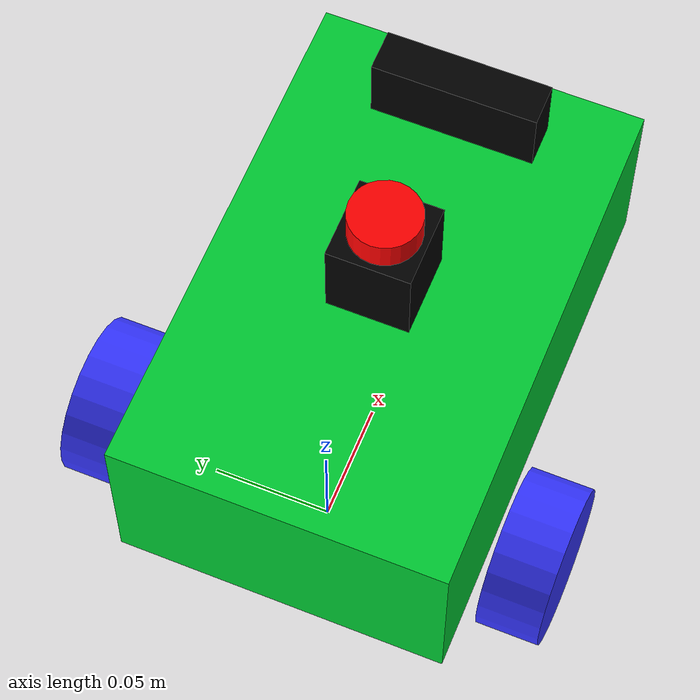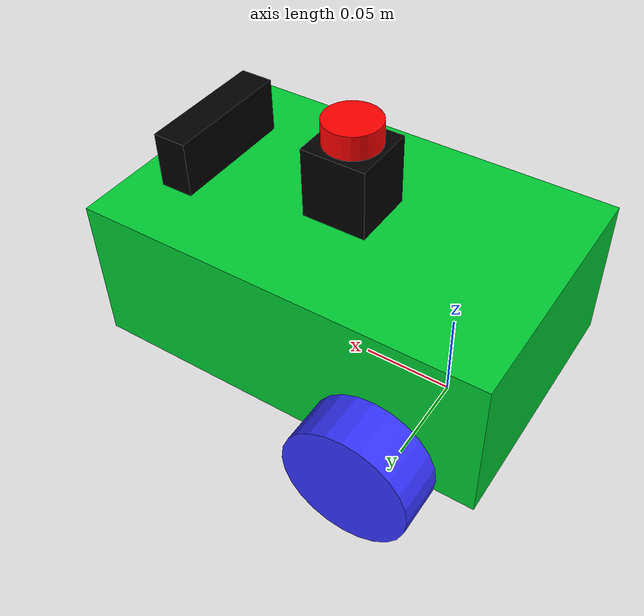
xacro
<?xml version="1.0"?>
<robot xmlns:xacro="http://www.ros.org/wiki/xacro"  name="differential_drive_robot">

    <xacro:arg name="use_ros2_control" default="true"/>
    <xacro:arg name="sim_mode" default="false"/>

    <xacro:include filename="robot_core.xacro"/>

    <xacro:if value="$(arg use_ros2_control)">
        <xacro:include filename="ros2_control.xacro"/>
    </xacro:if>
    <xacro:unless value="$(arg use_ros2_control)">
        <xacro:include filename="gazebo_control.xacro"/>
    </xacro:unless>

    <xacro:include filename="lidar.xacro"/>

    <xacro:include filename="camera.xacro"/>

</robot>

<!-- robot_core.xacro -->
<robot xmlns:xacro="http://www.ros.org/wiki/xacro">

    <xacro:include filename="inertial_macros.xacro"/>

    <xacro:property name="chassis_length" value="0.22"/>
    <xacro:property name="chassis_width" value="0.14"/>
    <xacro:property name="chassis_height" value="0.082"/>
    <xacro:property name="chassis_mass" value="1.0"/>
    <xacro:property name="chassis_offset_z" value="0.015"/>
    <xacro:property name="wheel_radius" value="0.033"/>
    <xacro:property name="wheel_thickness" value="0.026"/>
    <xacro:property name="wheel_mass" value="0.0385"/>
    <xacro:property name="wheel_offset_x" value="0.05"/>
    <xacro:property name="wheel_offset_y" value="0.09"/>
    <xacro:property name="wheel_offset_z" value="0.033"/>
    <xacro:property name="caster_wheel_radius" value="0.015"/>
    <xacro:property name="caster_wheel_mass" value="0.02"/>
    <xacro:property name="caster_wheel_offset_x" value="0.06"/>
    <xacro:property name="caster_wheel_offset_z" value="0.015"/>

    <xacro:property name="wheel_effort" value="2000"/>
    <xacro:property name="wheel_velocity" value="30"/>

    <material name="white">
        <color rgba="1 1 1 1"/>
    </material>

    <material name="orange">
        <color rgba="1 0.3 0.1 1"/>
    </material>

    <material name="blue">
        <color rgba="0.2 0.2 1 1"/>
    </material>

    <material name="black">
        <color rgba="0 0 0 1"/>
    </material>

    <material name="red">
        <color rgba="1 0 0 1"/>
    </material>

    <material name="green">
        <color rgba="0 0.8 0.2 1"/>
    </material>

    <!-- BASE FOOTPRINT -->
    <link name="base_footprint"></link>

    <!-- BASE LINK -->
    <joint name="base_joint" type="fixed">
        <parent link="base_footprint"/>
        <child link="base_link"/>
        <origin xyz="0 0 ${chassis_offset_z}" rpy="0 0 0"/>
    </joint>

    <link name="base_link"></link>

    <!-- CHASSIS LINK -->
    <joint name="chassis_joint" type="fixed">
        <parent link="base_link"/>
        <child link="chassis"/>
        <origin xyz="${-wheel_offset_x} 0 0"/>
    </joint>

    <link name="chassis">
        <visual>
            <origin xyz="${chassis_length/2} 0 ${chassis_height/2}"/>
            <geometry>
                <box size="${chassis_length} ${chassis_width} ${chassis_height}"/>
            </geometry>
            <material name="green"/>
        </visual>
        <collision>
            <origin xyz="${chassis_length/2} 0 ${chassis_height/2}"/>
            <geometry>
                <box size="${chassis_length} ${chassis_width} ${chassis_height}"/>
            </geometry>
        </collision>
        <xacro:inertial_box mass="${chassis_mass}" x="${chassis_length}" y="${chassis_width}" z="${chassis_height}">
            <origin xyz="${chassis_length/2} 0 ${chassis_height/2}" rpy="0 0 0"/>
        </xacro:inertial_box>
    </link>

    <gazebo reference="chassis">
        <material>Gazebo/Green</material>
    </gazebo>

    <!-- LEFT WHEEL LINK -->
    <joint name="left_wheel_joint" type="continuous">
        <parent link="base_link"/>
        <child link="left_wheel"/>
        <origin xyz="0 ${wheel_offset_y} ${wheel_offset_z - chassis_offset_z}" rpy="-${pi/2} 0 0"/>
        <axis xyz="0 0 1"/>
        <limit effort="${wheel_effort}" velocity="${wheel_velocity}"/>
        <dynamics damping="1.0" friction="1.0"/>
    </joint>

    <link name="left_wheel">
        <visual>
            <geometry>
                <cylinder radius="${wheel_radius}" length="${wheel_thickness}"/>
            </geometry>
            <material name="blue"/>
        </visual>
        <collision>
            <geometry>
                <cylinder radius="${wheel_radius}" length="${wheel_thickness}"/>
            </geometry>
        </collision>
        <xacro:inertial_cylinder mass="${wheel_mass}" length="${wheel_thickness}" radius="${wheel_radius}">
            <origin xyz="0 0 0" rpy="0 0 0"/>
        </xacro:inertial_cylinder>
    </link>

    <gazebo reference="left_wheel">
        <material>Gazebo/Blue</material>
        <mu1>0.2</mu1>
        <mu2>0.2</mu2>
    </gazebo>

    <!-- RIGHT WHEEL LINK -->
    <joint name="right_wheel_joint" type="continuous">
        <parent link="base_link"/>
        <child link="right_wheel"/>
        <origin xyz="0 ${-wheel_offset_y} ${wheel_offset_z - chassis_offset_z}" rpy="${pi/2} 0 0"/>
        <axis xyz="0 0 -1"/>
        <limit effort="${wheel_effort}" velocity="${wheel_velocity}"/>
        <dynamics damping="1.0" friction="1.0"/>
    </joint>

    <link name="right_wheel">
        <visual>
            <geometry>
                <cylinder radius="${wheel_radius}" length="${wheel_thickness}"/>
            </geometry>
            <material name="blue"/>
        </visual>
        <collision>
            <geometry>
                <cylinder radius="${wheel_radius}" length="${wheel_thickness}"/>
            </geometry>
        </collision>
        <xacro:inertial_cylinder mass="${wheel_mass}" length="${wheel_thickness}" radius="${wheel_radius}">
            <origin xyz="0 0 0" rpy="0 0 0"/>
        </xacro:inertial_cylinder>
    </link>

    <gazebo reference="right_wheel">
        <material>Gazebo/Blue</material>
        <mu1>0.2</mu1>
        <mu2>0.2</mu2>
    </gazebo>

    <!-- CASTER WHEEL LINK -->
    <joint name="caster_wheel_joint" type="fixed">
        <parent link="chassis"/>
        <child link="caster_wheel"/>
        <origin xyz="${chassis_length/2 + caster_wheel_offset_x} 0 0"/>
    </joint>

    <link name="caster_wheel">
        <visual>
            <geometry>
                <sphere radius="${caster_wheel_radius}"/>
            </geometry>
            <material name="black"/>
        </visual>
        <collision>
            <geometry>
                <sphere radius="${caster_wheel_radius}"/>
            </geometry>
        </collision>
        <xacro:inertial_sphere mass="${caster_wheel_mass}" radius="${caster_wheel_radius}">
            <origin xyz="0 0 0" rpy="0 0 0"/>
        </xacro:inertial_sphere>
    </link>

    <gazebo reference="caster_wheel">
        <material>Gazebo/Black</material>
        <mu1 value="0.001"/>
        <mu2 value="0.001"/>
    </gazebo>

</robot>

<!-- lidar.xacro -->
<robot xmlns:xacro="http://www.ros.org/wiki/xacro">

    <joint name="laser_joint" type="fixed">
        <parent link="chassis"/>
        <child link="laser_frame"/>
        <origin xyz="0.11 0 0.127" rpy="0 0 0"/>
    </joint>

    <link name="laser_frame">
        <visual>
            <geometry>
                <cylinder radius="0.015" length="0.013"/>
            </geometry>
            <material name="red"/>
        </visual>
        <visual>
            <origin xyz="0 0 -0.03"/>
            <geometry>
                <box size="0.035 0.035 0.047"/>
            </geometry>
            <material name="black"/>
        </visual>

        <collision>
            <geometry>
                <cylinder radius="0.015" length="0.013"/>
            </geometry>
        </collision>
        <xacro:inertial_cylinder mass="0.045" length="0.013" radius="0.015">
            <origin xyz="0 0 0" rpy="0 0 0"/>
        </xacro:inertial_cylinder>
    </link>

    <gazebo reference="laser_frame">
        <material>Gazebo/Red</material>

        <sensor name="laser_frame" type="gpu_lidar">
            <pose> 0 0 0 0 0 0 </pose>
            <topic>scan</topic>
            <update_rate>10</update_rate>
            <always_on>true</always_on>
            <visualize>true</visualize>  <!-- if want to use, to change flag "true"-->
            <gz_frame_id>laser_frame</gz_frame_id>
            <lidar>
                <scan>
                    <horizontal>
                        <samples>360</samples>
                        <min_angle>-3.14</min_angle>
                        <max_angle>3.14</max_angle>
                    </horizontal>
                </scan>
                <range>
                    <min>0.02</min>
                    <max>12</max>
                </range>
            </lidar>
        </sensor>
    </gazebo>

</robot>

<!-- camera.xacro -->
<robot xmlns:xacro="http://www.ros.org/wiki/xacro">

    <joint name="camera_joint" type="fixed">
        <parent link="chassis"/>
        <child link="camera_link"/>
        <origin xyz="0.192 0 0.097" rpy="0 0 0"/>
    </joint>

    <link name="camera_link">
        <pose>0 0 0 0 0 0</pose>

        <collision name='collision'>
            <origin xyz="0 0 0" rpy="0 0 0"/>
            <geometry>
                <box size="0.018 0.07 0.03"/>
            </geometry>
        </collision>

        <visual name='camera_link_visual'>
            <origin xyz="0 0 0" rpy="0 0 0"/>
            <geometry>
                <box size="0.018 0.07 0.03"/>
            </geometry>
            <material name="black"/>
        </visual>
    </link>

    <joint name="camera_optical_joint" type="fixed">
        <parent link="camera_link"/>
        <child link="camera_link_optical"/>
        <origin xyz="0 0 0" rpy="${-pi/2} 0 ${-pi/2}"/>
    </joint>

    <link name="camera_link_optical"></link>

    <gazebo reference="camera_link">
        <material>Gazebo/Black</material>

        <sensor name="camera" type="camera">
            <pose> 0 0 0 0 0 0 </pose>
            <always_on>true</always_on>
            <visualize>true</visualize>
            <update_rate>10</update_rate>
            <topic>/camera/image_raw</topic>
            <gz_frame_id>camera_link_optical</gz_frame_id>
            <camera name="logicool_c270n">
                <camera_info_topic>/camera/camera_info</camera_info_topic>
                <horizontal_fov>1.089</horizontal_fov>  <!-- this unit is radians -->
                <image>
                    <format>R8G8B8</format>
                    <width>640</width>
                    <height>480</height>
                </image>
                <clip>
                    <near>0.05</near>
                    <far>8.0</far>
                </clip>
            </camera>
        </sensor>
    </gazebo>

</robot>
